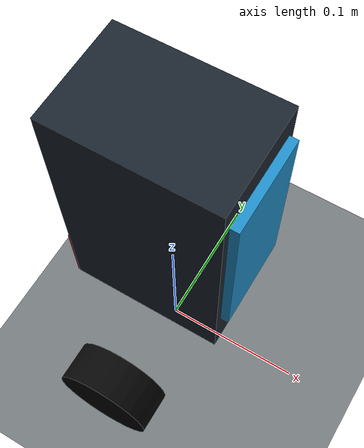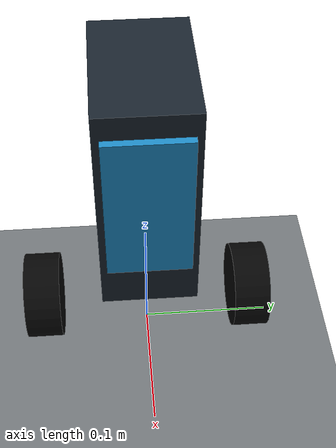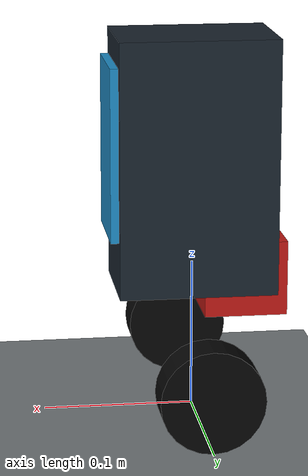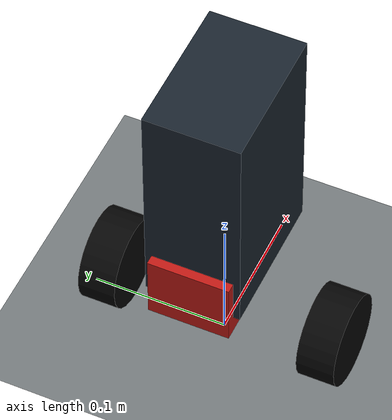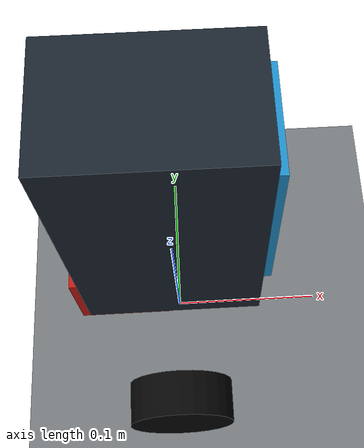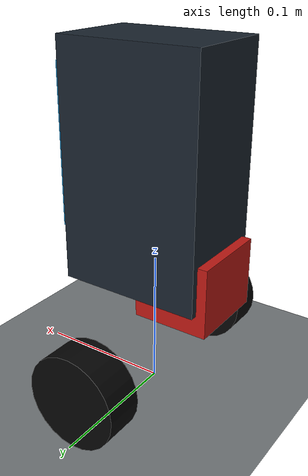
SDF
<?xml version="1.0" ?>
<sdf version="1.10">
  <world name="tumbller_lab">
    <physics name="default_physics" type="ode">
      <max_step_size>0.001</max_step_size>
      <real_time_factor>1.0</real_time_factor>
      <real_time_update_rate>1000</real_time_update_rate>
    </physics>

    <plugin filename="gz-sim-physics-system" name="gz::sim::systems::Physics"/>
    <plugin filename="gz-sim-user-commands-system" name="gz::sim::systems::UserCommands"/>
    <plugin filename="gz-sim-scene-broadcaster-system" name="gz::sim::systems::SceneBroadcaster"/>
    <plugin filename="gz-sim-sensors-system" name="gz::sim::systems::Sensors">
      <render_engine>ogre2</render_engine>
    </plugin>
    <plugin filename="gz-sim-imu-system" name="gz::sim::systems::Imu"/>

    <light name="sun" type="directional">
      <cast_shadows>true</cast_shadows>
      <pose>0 0 10 0 0 0</pose>
      <diffuse>0.8 0.8 0.8 1</diffuse>
      <specular>0.2 0.2 0.2 1</specular>
      <direction>-0.5 0.1 -0.9</direction>
    </light>

    <model name="ground_plane">
      <static>true</static>
      <link name="ground">
        <collision name="collision">
          <geometry>
            <plane>
              <normal>0 0 1</normal>
              <size>20 20</size>
            </plane>
          </geometry>
          <surface>
            <friction>
              <ode>
                <mu>1.2</mu>
                <mu2>1.2</mu2>
              </ode>
            </friction>
          </surface>
        </collision>
        <visual name="visual">
          <geometry>
            <plane>
              <normal>0 0 1</normal>
              <size>20 20</size>
            </plane>
          </geometry>
          <material>
            <ambient>0.35 0.37 0.38 1</ambient>
            <diffuse>0.45 0.47 0.48 1</diffuse>
          </material>
        </visual>
      </link>
    </model>

    <include>
      <uri>model://tumbller</uri>
      <pose>0 0 0 0 0 0</pose>
    </include>
  </world>
</sdf>

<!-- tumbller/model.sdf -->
<sdf version="1.10">
  <model name="tumbller">
    <pose>0 0 0 0 0 0</pose>
    <self_collide>false</self_collide>
    <plugin filename="gz-sim-joint-state-publisher-system" name="gz::sim::systems::JointStatePublisher">
      <joint_name>left_wheel_joint</joint_name>
      <joint_name>right_wheel_joint</joint_name>
    </plugin>
    <plugin filename="gz-sim-joint-controller-system" name="gz::sim::systems::JointController">
      <joint_name>left_wheel_joint</joint_name>
      <topic>/model/tumbller/joint/left_wheel_joint/cmd_vel</topic>
      <use_velocity_commands>true</use_velocity_commands>
      <p_gain>2.0</p_gain>
      <i_gain>0.0</i_gain>
      <d_gain>0.05</d_gain>
      <cmd_max>18.85</cmd_max>
      <cmd_min>-18.85</cmd_min>
    </plugin>
    <plugin filename="gz-sim-joint-controller-system" name="gz::sim::systems::JointController">
      <joint_name>right_wheel_joint</joint_name>
      <topic>/model/tumbller/joint/right_wheel_joint/cmd_vel</topic>
      <use_velocity_commands>true</use_velocity_commands>
      <p_gain>2.0</p_gain>
      <i_gain>0.0</i_gain>
      <d_gain>0.05</d_gain>
      <cmd_max>18.85</cmd_max>
      <cmd_min>-18.85</cmd_min>
    </plugin>
    <link name="chassis">
      <pose>0 0 0.145 0 0 0</pose>
      <inertial>
        <pose>0 0 -0.035 0 0 0</pose>
        <mass>0.62</mass>
        <inertia>
          <ixx>0.0036</ixx>
          <ixy>0</ixy>
          <ixz>0</ixz>
          <iyy>0.0022</iyy>
          <iyz>0</iyz>
          <izz>0.0028</izz>
        </inertia>
      </inertial>
      <collision name="body_collision">
        <pose>0 0 0.025 0 0 0</pose>
        <geometry>
          <box>
            <size>0.105 0.070 0.170</size>
          </box>
        </geometry>
      </collision>
      <visual name="body_visual">
        <pose>0 0 0.025 0 0 0</pose>
        <geometry>
          <box>
            <size>0.105 0.070 0.170</size>
          </box>
        </geometry>
        <material>
          <ambient>0.08 0.10 0.13 1</ambient>
          <diffuse>0.10 0.14 0.18 1</diffuse>
          <specular>0.25 0.25 0.25 1</specular>
        </material>
      </visual>
      <visual name="front_panel">
        <pose>0.055 0 0.035 0 0 0</pose>
        <geometry>
          <box>
            <size>0.006 0.060 0.115</size>
          </box>
        </geometry>
        <material>
          <ambient>0.12 0.55 0.78 1</ambient>
          <diffuse>0.12 0.55 0.78 1</diffuse>
        </material>
      </visual>
      <visual name="battery_block">
        <pose>-0.032 0 -0.050 0 0 0</pose>
        <geometry>
          <box>
            <size>0.055 0.060 0.050</size>
          </box>
        </geometry>
        <material>
          <ambient>0.75 0.10 0.08 1</ambient>
          <diffuse>0.75 0.10 0.08 1</diffuse>
        </material>
      </visual>
      <sensor name="imu_sensor" type="imu">
        <pose>0.025 0 0.065 0 0 0</pose>
        <always_on>true</always_on>
        <update_rate>200</update_rate>
        <topic>/world/tumbller_lab/model/tumbller/link/chassis/sensor/imu_sensor/imu</topic>
        <imu>
          <angular_velocity>
            <x>
              <noise type="gaussian">
                <mean>0</mean>
                <stddev>0.002</stddev>
              </noise>
            </x>
            <y>
              <noise type="gaussian">
                <mean>0</mean>
                <stddev>0.002</stddev>
              </noise>
            </y>
            <z>
              <noise type="gaussian">
                <mean>0</mean>
                <stddev>0.002</stddev>
              </noise>
            </z>
          </angular_velocity>
          <linear_acceleration>
            <x>
              <noise type="gaussian">
                <mean>0</mean>
                <stddev>0.04</stddev>
              </noise>
            </x>
            <y>
              <noise type="gaussian">
                <mean>0</mean>
                <stddev>0.04</stddev>
              </noise>
            </y>
            <z>
              <noise type="gaussian">
                <mean>0</mean>
                <stddev>0.04</stddev>
              </noise>
            </z>
          </linear_acceleration>
        </imu>
      </sensor>
    </link>
    <link name="left_wheel">
      <pose>0 0.083 0.034 0 0 0</pose>
      <inertial>
        <mass>0.055</mass>
        <inertia>
          <ixx>0.000020</ixx>
          <ixy>0</ixy>
          <ixz>0</ixz>
          <iyy>0.000035</iyy>
          <iyz>0</iyz>
          <izz>0.000020</izz>
        </inertia>
      </inertial>
      <collision name="collision">
        <pose>0 0 0 1.57079632679 0 0</pose>
        <geometry>
          <cylinder>
            <radius>0.034</radius>
            <length>0.028</length>
          </cylinder>
        </geometry>
        <surface>
          <friction>
            <ode>
              <mu>1.35</mu>
              <mu2>1.35</mu2>
            </ode>
          </friction>
        </surface>
      </collision>
      <visual name="visual">
        <pose>0 0 0 1.57079632679 0 0</pose>
        <geometry>
          <cylinder>
            <radius>0.034</radius>
            <length>0.028</length>
          </cylinder>
        </geometry>
        <material>
          <ambient>0.02 0.02 0.02 1</ambient>
          <diffuse>0.02 0.02 0.02 1</diffuse>
        </material>
      </visual>
    </link>
    <link name="right_wheel">
      <pose>0 -0.083 0.034 0 0 0</pose>
      <inertial>
        <mass>0.055</mass>
        <inertia>
          <ixx>0.000020</ixx>
          <ixy>0</ixy>
          <ixz>0</ixz>
          <iyy>0.000035</iyy>
          <iyz>0</iyz>
          <izz>0.000020</izz>
        </inertia>
      </inertial>
      <collision name="collision">
        <pose>0 0 0 1.57079632679 0 0</pose>
        <geometry>
          <cylinder>
            <radius>0.034</radius>
            <length>0.028</length>
          </cylinder>
        </geometry>
        <surface>
          <friction>
            <ode>
              <mu>1.35</mu>
              <mu2>1.35</mu2>
            </ode>
          </friction>
        </surface>
      </collision>
      <visual name="visual">
        <pose>0 0 0 1.57079632679 0 0</pose>
        <geometry>
          <cylinder>
            <radius>0.034</radius>
            <length>0.028</length>
          </cylinder>
        </geometry>
        <material>
          <ambient>0.02 0.02 0.02 1</ambient>
          <diffuse>0.02 0.02 0.02 1</diffuse>
        </material>
      </visual>
    </link>
    <joint name="left_wheel_joint" type="revolute">
      <parent>chassis</parent>
      <child>left_wheel</child>
      <pose relative_to="chassis">0 0.083 -0.111 0 0 0</pose>
      <axis>
        <xyz>0 1 0</xyz>
        <limit>
          <lower>-1e16</lower>
          <upper>1e16</upper>
          <effort>2.5</effort>
          <velocity>22.0</velocity>
        </limit>
        <dynamics>
          <damping>0.001</damping>
          <friction>0.001</friction>
        </dynamics>
      </axis>
    </joint>
    <joint name="right_wheel_joint" type="revolute">
      <parent>chassis</parent>
      <child>right_wheel</child>
      <pose relative_to="chassis">0 -0.083 -0.111 0 0 0</pose>
      <axis>
        <xyz>0 1 0</xyz>
        <limit>
          <lower>-1e16</lower>
          <upper>1e16</upper>
          <effort>2.5</effort>
          <velocity>22.0</velocity>
        </limit>
        <dynamics>
          <damping>0.001</damping>
          <friction>0.001</friction>
        </dynamics>
      </axis>
    </joint>
  </model>
</sdf>
